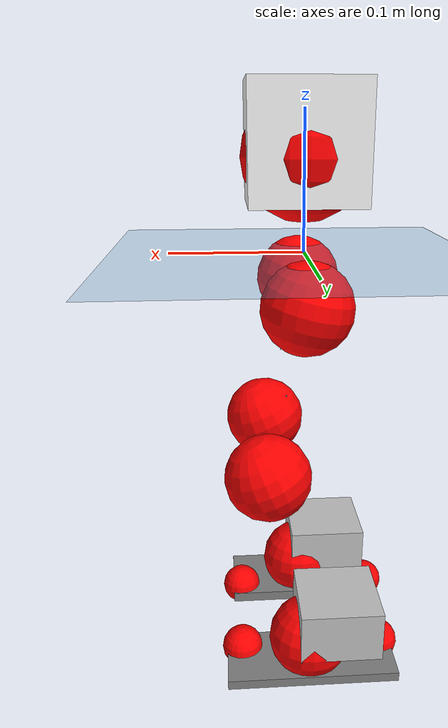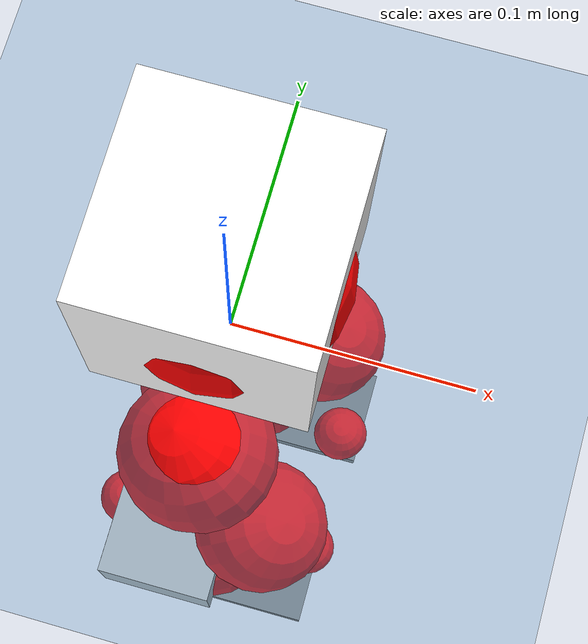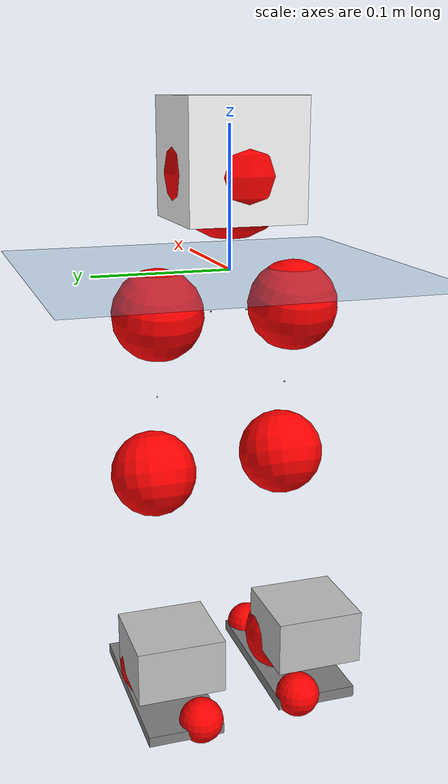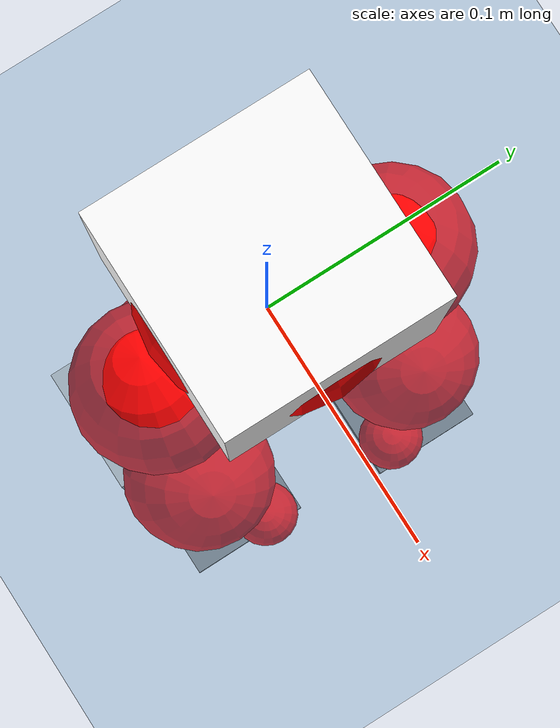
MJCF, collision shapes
<mujoco model="pi_12dof_release_v1">
  <compiler angle="radian" assetdir="assets" balanceinertia="true" inertiafromgeom="false"/>

  <option timestep="0.005" density="1.2" viscosity="2e-05"/>

  <size nkey="1"/>

  <visual>
    <quality shadowsize="8192"/>
    <map shadowclip="0.5"/>
  </visual>

  <default>
    <default class="/">
      <joint armature="0.01" damping="0.01" frictionloss="0.01"/>
      <geom contype="0" conaffinity="0" group="1" solref="-1000 -80"/>
      <site size="0.01 0.005 0.005" group="5"/>
      <general forcelimited="true" biastype="affine" gainprm="20" biasprm="0 -20 -0.5"/>
      <default class="foot">
        <geom size="0.0845 0.036 0.005" type="box" condim="6" group="4" priority="1" friction="0.9 0.2 0.2" solimp="0.015 1 0.005"/>
      </default>
      <default class="reward_collision_sphere">
        <geom group="5" rgba="1 0 0 1"/>
      </default>
    </default>
  </default>

  <asset>
    <texture type="skybox" colorspace="auto" name="//unnamed_texture_0" builtin="gradient" rgb1="0.95 0.95 0.95" rgb2="0.95 0.95 0.95" width="100" height="600"/>
    <texture type="2d" colorspace="auto" name="texplane" builtin="checker" rgb1="0.345 0.575 0.748" rgb2="0.345 0.575 0.748" markrgb="1 1 1" width="512" height="512"/>
    <material name="MatPlane" class="/" texture="texplane" texuniform="true" texrepeat="2 2" specular="0.9"/>
    <mesh name="baselink_1" class="/" file="baselink_1.STL"/>
    <mesh name="r_hip_pitch_link" class="/" file="r_hip_pitch_link.STL"/>
    <mesh name="r_hip_roll_link" class="/" file="r_hip_roll_link.STL"/>
    <mesh name="r_thigh_link" class="/" file="r_thigh_link.STL"/>
    <mesh name="r_calf_link" class="/" file="r_calf_link.STL"/>
    <mesh name="r_ankle_pitch_link" class="/" file="r_ankle_pitch_link.STL"/>
    <mesh name="r_ankle_roll_link" class="/" file="r_ankle_roll_link.STL"/>
    <mesh name="l_hip_pitch_link" class="/" file="l_hip_pitch_link.STL"/>
    <mesh name="l_hip_roll_link" class="/" file="l_hip_roll_link.STL"/>
    <mesh name="l_thigh_link" class="/" file="l_thigh_link.STL"/>
    <mesh name="l_calf_link" class="/" file="l_calf_link.STL"/>
    <mesh name="l_ankle_pitch_link" class="/" file="l_ankle_pitch_link.STL"/>
    <mesh name="l_ankle_roll_link" class="/" file="l_ankle_roll_link.STL"/>
  </asset>

  <worldbody>
    <geom name="floor" class="/" size="100 100 0.125" type="plane" group="0" material="MatPlane"/>
    <light name="toplight_shadow" class="/" pos="0 0 5" dir="0.0990148 0.0990148 -0.990148" type="directional" ambient="0.04 0.04 0.04" diffuse="0.55 0.55 0.55" specular="0.12 0.12 0.12"/>
    <light name="toplight_fill" class="/" pos="0 0 5" dir="0.0990148 0.0990148 -0.990148" type="directional" castshadow="false" ambient="0.04 0.04 0.04" diffuse="0.3 0.3 0.3" specular="0.08 0.08 0.08"/>
    <body name="trunk" pos="0.000536752 -0.000247196 0.00114231" quat="1 -0.000159788 7.01523e-07 -9.41985e-05">
      <inertial pos="0.00342126 0.000267481 0.0373891" quat="0.695402 0.0097113 0.00988724 0.718487" mass="1.19421" diaginertia="0.00426479 0.00144133 0.00305878"/>
      <joint name="//unnamed_joint_0" type="free"/>
      <geom name="//unnamed_geom_1" class="/" type="mesh" density="0" rgba="1 1 1 1" mesh="baselink_1"/>
      <geom name="//unnamed_geom_2" class="/" size="0.0416111 0.0416111 0.0416111" pos="0 0 0.0757082" type="box" rgba="1 1 1 1"/>
      <geom name="//unnamed_geom_3" class="reward_collision_sphere" size="0.0457722" pos="0 0 0.0662447"/>
      <site name="imu" class="/" pos="0.00751728 0.0121439 -0.00623248" size="0.00832221"/>
      <camera name="track" class="/" pos="0 -1.39785 0" quat="0.707107 0.707107 0 0" mode="trackcom"/>
      <camera name="ego_camera" class="/" pos="0.0638539 0 0.170344" quat="-0.5 -0.5 0.5 0.5"/>
      <body name="r_hip_pitch_link" pos="-0.00106284 -0.0125134 -0.030446" quat="0.992197 1.5036e-05 -0.124678 8.11909e-05">
        <inertial pos="0.000722351 -0.038552 0.000696682" quat="-0.0202414 0.706256 -0.032826 0.706906" mass="0.205734" diaginertia="4.79861e-05 1.53743e-05 6.13085e-05"/>
        <joint name="r_hip_pitch_joint" class="/" pos="0 0 0" axis="-0.00114165 -0.999975 0.00694727" range="-1.70799 1.20272" armature="0.0081461" damping="0.00561595" frictionloss="0.00878542"/>
        <geom name="//unnamed_geom_4" class="/" type="mesh" density="0" rgba="0.75294 0.75294 0.75294 1" mesh="r_hip_pitch_link"/>
        <geom name="//unnamed_geom_5" class="/" size="0.000416111 0.000416111 0.000416111" type="box" rgba="0.75294 0.75294 0.75294 1"/>
        <body name="r_hip_roll_link" pos="0.000333722 -0.0356741 0.00130747" quat="1 0.000598935 -8.06465e-06 0.000456105">
          <inertial pos="-0.00214053 -0.000100188 -0.0610965" quat="0.703815 -0.0695218 -0.075529 0.702927" mass="0.228197" diaginertia="0.000151825 4.6237e-05 9.5751e-05"/>
          <joint name="r_hip_roll_joint" class="/" pos="0 0 0" axis="-0.999966 -0.0037411 -0.00734513" range="-0.109932 0.50123" armature="0.00892585" damping="0.00145851" frictionloss="0.00929245"/>
          <geom name="//unnamed_geom_6" class="/" type="mesh" density="0" rgba="0.75294 0.75294 0.75294 1" mesh="r_hip_roll_link"/>
          <geom name="//unnamed_geom_7" class="/" size="0.000416111 0.000416111 0.000416111" type="box" rgba="0.75294 0.75294 0.75294 1"/>
          <geom name="//unnamed_geom_8" class="reward_collision_sphere" size="0.0332888"/>
          <body name="r_thigh_link" pos="-0.00196647 -0.000536786 -0.0637109" quat="1 -0.000350165 -0.00070721 -0.000477595">
            <inertial pos="0.00242068 0.00149666 -0.0434768" quat="0.736004 0.676968 0.00349029 -0.000621234" mass="0.0652536" diaginertia="5.66758e-05 1.59796e-05 4.46576e-05"/>
            <joint name="r_thigh_joint" class="/" pos="0 0 0" axis="0.000690689 0.000321791 -1" stiffness="0.006529" range="-0.35654 0.604527" armature="0.00890032" damping="0.0126022" frictionloss="0.00781927"/>
            <geom name="//unnamed_geom_9" class="/" type="mesh" density="0" rgba="0.75294 0.75294 0.75294 1" mesh="r_thigh_link"/>
            <geom name="//unnamed_geom_10" class="/" size="0.000416111 0.000416111 0.000416111" type="box" rgba="0.75294 0.75294 0.75294 1"/>
            <body name="r_calf_link" pos="-0.00188607 -0.00332216 -0.0635677" quat="0.9476 1.46904e-05 0.319459 0.000714402">
              <inertial pos="-0.00352753 -0.000512399 -0.0661842" quat="0.999961 -0.00870877 -0.000776462 0.00137707" mass="0.446837" diaginertia="0.00155082 0.000572118 0.000129568"/>
              <joint name="r_calf_joint" class="/" pos="0 0 0" axis="-0.00947891 -0.999894 0.0110306" range="-1.64353 0.69973" armature="0.00821904" damping="0.000161853" frictionloss="0.00826574"/>
              <geom name="//unnamed_geom_11" class="/" type="mesh" density="0" rgba="0.75294 0.75294 0.75294 1" mesh="r_calf_link"/>
              <geom name="//unnamed_geom_12" class="/" size="0.000416111 0.000416111 0.000416111" type="box" rgba="0.75294 0.75294 0.75294 1"/>
              <geom name="//unnamed_geom_13" class="reward_collision_sphere" size="0.0332888"/>
              <body name="r_ankle_pitch_link" pos="-0.0012091 -0.00155636 -0.137675" quat="0.979955 -0.00021698 -0.199215 0.0013044">
                <inertial pos="0.00122148 0.00228364 -0.0030692" quat="0.00280902 0.712826 -0.0106118 0.701255" mass="0.102562" diaginertia="0.000135344 3.63353e-05 9.35813e-05"/>
                <joint name="r_ankle_pitch_joint" class="/" pos="0 0 0" axis="0.010462 -0.999945 0.000890549" stiffness="0.000638262" range="-1.35003 0.508994" armature="0.00716414" damping="0" frictionloss="0.00875756"/>
                <geom name="//unnamed_geom_14" class="/" type="mesh" density="0" rgba="0.75294 0.75294 0.75294 1" mesh="r_ankle_pitch_link"/>
                <geom name="//unnamed_geom_15" class="/" size="0.0324566 0.0332888 0.0208055" type="box" rgba="0.75294 0.75294 0.75294 1"/>
                <body name="r_ankle_roll_link" pos="0.0656418 0.00581765 0.000575667" quat="1 0.000499522 -0.000621021 0.000376918">
                  <inertial pos="-0.0235029 0.000263998 -0.0128233" quat="0.559768 0.423416 0.436646 0.562777" mass="0.295758" diaginertia="0.000511287 0.000173168 0.000209644"/>
                  <joint name="r_ankle_roll_joint" class="/" pos="0 0 0" axis="-0.999992 -0.00176722 0.00345066" stiffness="0.00923807" range="-0.11384 0.200523" armature="0.00813658" damping="0" frictionloss="0.00851386"/>
                  <geom name="//unnamed_geom_16" class="/" type="mesh" density="0" rgba="0.75294 0.75294 0.75294 1" mesh="r_ankle_roll_link"/>
                  <geom name="//unnamed_geom_17" class="/" type="mesh" rgba="0.75294 0.75294 0.75294 1" mesh="r_ankle_roll_link"/>
                  <geom name="right_foot" class="foot" size="0.0634518 0.0307388 0.00428104" pos="-0.0434206 0 -0.0416395"/>
                  <geom name="//unnamed_geom_19" class="reward_collision_sphere" size="0.0332888" pos="-0.0425693 0 -0.0189271"/>
                  <geom name="//unnamed_geom_20" class="reward_collision_sphere" size="0.0166444" pos="0.0127708 0.0139785 -0.0378541"/>
                  <geom name="//unnamed_geom_21" class="reward_collision_sphere" size="0.0166444" pos="-0.102166 0.0139785 -0.0378541"/>
                  <site name="right_foot" class="foot" pos="-0.0434206 0 -0.0416395" size="0.00832221"/>
                </body>
              </body>
            </body>
          </body>
        </body>
      </body>
      <body name="l_hip_pitch_link" pos="-0.000508897 0.0144169 -0.0302826" quat="0.992064 0.000185072 -0.125734 0.000235283">
        <inertial pos="-0.00233227 0.0378572 0.00130757" quat="-0.026405 0.704887 0.035788 0.707924" mass="0.217107" diaginertia="5.37651e-05 1.75792e-05 7.28761e-05"/>
        <joint name="l_hip_pitch_joint" class="/" pos="0 0 0" axis="0.00310624 0.999995 -9.4673e-05" range="-1.22624 1.70042" armature="0.00830033" damping="0" frictionloss="0.00941097"/>
        <geom name="//unnamed_geom_22" class="/" type="mesh" density="0" rgba="0.75294 0.75294 0.75294 1" mesh="l_hip_pitch_link"/>
        <geom name="//unnamed_geom_23" class="/" size="0.000416111 0.000416111 0.000416111" type="box" rgba="0.75294 0.75294 0.75294 1"/>
        <body name="l_hip_roll_link" pos="0.00218755 0.0387423 -0.00130052" quat="1 -0.000318076 0.000622152 9.58437e-05">
          <inertial pos="-0.00313945 -0.00157667 -0.0561073" quat="0.699091 -0.0756572 -0.0780637 0.70672" mass="0.220088" diaginertia="0.000144357 4.55307e-05 9.71945e-05"/>
          <joint name="l_hip_roll_joint" class="/" pos="0 0 0" axis="-0.999998 0.00170375 -0.000742023" range="-0.495704 0.0642141" armature="0.00770529" damping="0.0145981" frictionloss="0.00829527"/>
          <geom name="//unnamed_geom_24" class="/" type="mesh" density="0" rgba="0.75294 0.75294 0.75294 1" mesh="l_hip_roll_link"/>
          <geom name="//unnamed_geom_25" class="/" size="0.000416111 0.000416111 0.000416111" type="box" rgba="0.75294 0.75294 0.75294 1"/>
          <geom name="//unnamed_geom_26" class="reward_collision_sphere" size="0.0332888"/>
          <body name="l_thigh_link" pos="-0.00224529 -0.00190475 -0.0661916" quat="1 -0.000369858 4.28716e-05 0.000453503">
            <inertial pos="0.00124688 0.000699974 -0.0437951" quat="0.675459 0.737397 -0.00015981 7.55575e-05" mass="0.0629408" diaginertia="5.50096e-05 1.49311e-05 4.44891e-05"/>
            <joint name="l_thigh_joint" class="/" pos="0 0 0" axis="-0.000542858 -0.00125621 -0.999999" range="-0.581351 0.276961" armature="0.00748929" damping="0" frictionloss="0.00771764"/>
            <geom name="//unnamed_geom_27" class="/" type="mesh" density="0" rgba="0.75294 0.75294 0.75294 1" mesh="l_thigh_link"/>
            <geom name="//unnamed_geom_28" class="/" size="0.000416111 0.000416111 0.000416111" type="box" rgba="0.75294 0.75294 0.75294 1"/>
            <body name="l_calf_link" pos="-0.00304501 0.000643994 -0.0668982" quat="0.947734 -5.73444e-05 0.31906 0.000380586">
              <inertial pos="-0.00101062 -0.000383223 -0.0643456" quat="0.999984 0.00320552 0.000746865 0.00454835" mass="0.474591" diaginertia="0.00154096 0.000568329 0.000134837"/>
              <joint name="l_calf_joint" class="/" pos="0 0 0" axis="-0.0145304 0.999894 -8.84742e-05" range="-0.658126 1.64717" armature="0.00913107" damping="0" frictionloss="0.00921349"/>
              <geom name="//unnamed_geom_29" class="/" type="mesh" density="0" rgba="0.75294 0.75294 0.75294 1" mesh="l_calf_link"/>
              <geom name="//unnamed_geom_30" class="/" size="0.000416111 0.000416111 0.000416111" type="box" rgba="0.75294 0.75294 0.75294 1"/>
              <geom name="//unnamed_geom_31" class="reward_collision_sphere" size="0.0332888"/>
              <body name="l_ankle_pitch_link" pos="-0.00233775 0.00341894 -0.13669" quat="0.979977 -0.000161507 -0.199109 -0.000152819">
                <inertial pos="0.00716741 -0.003469 -8.85519e-05" quat="-0.0027526 0.71264 0.00878056 0.701469" mass="0.10019" diaginertia="0.000134156 3.61313e-05 9.02541e-05"/>
                <joint name="l_ankle_pitch_joint" class="/" pos="0 0 0" axis="0.000449135 1 -0.000128202" stiffness="0.00190711" range="-0.549713 1.29235" armature="0.00704952" damping="0.0172334" frictionloss="0.00783675"/>
                <geom name="//unnamed_geom_32" class="/" type="mesh" density="0" rgba="0.75294 0.75294 0.75294 1" mesh="l_ankle_pitch_link"/>
                <geom name="//unnamed_geom_33" class="/" size="0.0324566 0.0332888 0.0208055" type="box" rgba="0.75294 0.75294 0.75294 1"/>
                <body name="l_ankle_roll_link" pos="0.0644247 0.00153095 -0.000859516" quat="0.999999 0.000877202 -0.000558734 0.00015554">
                  <inertial pos="-0.0195363 -0.000941544 -0.0124599" quat="0.560025 0.430196 0.434752 0.558832" mass="0.301739" diaginertia="0.000513756 0.000182815 0.000222439"/>
                  <joint name="l_ankle_roll_joint" class="/" pos="0 0 0" axis="-1 0.000726924 -0.000571527" range="-0.136912 0.191764" armature="0.00839746" damping="0" frictionloss="0.00719673"/>
                  <geom name="//unnamed_geom_34" class="/" type="mesh" density="0" rgba="0.75294 0.75294 0.75294 1" mesh="l_ankle_roll_link"/>
                  <geom name="//unnamed_geom_35" class="/" type="mesh" rgba="0.75294 0.75294 0.75294 1" mesh="l_ankle_roll_link"/>
                  <geom name="left_foot" class="foot" size="0.0689277 0.0285863 0.00386359" pos="-0.0434206 0 -0.0416395"/>
                  <geom name="//unnamed_geom_37" class="reward_collision_sphere" size="0.0332888" pos="-0.0425693 0 -0.0189271"/>
                  <geom name="//unnamed_geom_38" class="reward_collision_sphere" size="0.0166444" pos="0.0127708 -0.0139785 -0.0378541"/>
                  <geom name="//unnamed_geom_39" class="reward_collision_sphere" size="0.0166444" pos="-0.102166 -0.0139785 -0.0378541"/>
                  <site name="left_foot" class="foot" pos="-0.0434206 0 -0.0416395" size="0.00832221"/>
                </body>
              </body>
            </body>
          </body>
        </body>
      </body>
    </body>
  </worldbody>

  <contact>
    <pair class="/" geom1="floor" geom2="right_foot" name="//unnamed_contact_1"/>
    <pair class="/" geom1="floor" geom2="left_foot" name="//unnamed_contact_0"/>
  </contact>

  <actuator>
    <general name="r_hip_pitch_joint" class="/" joint="r_hip_pitch_joint" forcerange="-17.8008 17.8008" gainprm="17.5016" biasprm="0 -17.5016 -0.418846"/>
    <general name="r_hip_roll_joint" class="/" joint="r_hip_roll_joint" forcerange="-18.5603 18.5603" gainprm="17.5016" biasprm="0 -17.5016 -0.418846"/>
    <general name="r_thigh_joint" class="/" joint="r_thigh_joint" forcerange="-17.6517 17.6517" gainprm="17.5016" biasprm="0 -17.5016 -0.418846"/>
    <general name="r_calf_joint" class="/" joint="r_calf_joint" forcerange="-16.1513 16.1513" gainprm="17.5016" biasprm="0 -17.5016 -0.418846"/>
    <general name="r_ankle_pitch_joint" class="/" joint="r_ankle_pitch_joint" forcerange="-15.6218 15.6218" gainprm="17.5016" biasprm="0 -17.5016 -0.418846"/>
    <general name="r_ankle_roll_joint" class="/" joint="r_ankle_roll_joint" forcerange="-18.4672 18.4672" gainprm="17.5016" biasprm="0 -17.5016 -0.418846"/>
    <general name="l_hip_pitch_joint" class="/" joint="l_hip_pitch_joint" forcerange="-17.8202 17.8202" gainprm="17.5016" biasprm="0 -17.5016 -0.418846"/>
    <general name="l_hip_roll_joint" class="/" joint="l_hip_roll_joint" forcerange="-18.3932 18.3932" gainprm="17.5016" biasprm="0 -17.5016 -0.418846"/>
    <general name="l_thigh_joint" class="/" joint="l_thigh_joint" forcerange="-19.0994 19.0994" gainprm="17.5016" biasprm="0 -17.5016 -0.418846"/>
    <general name="l_calf_joint" class="/" joint="l_calf_joint" forcerange="-16.7579 16.7579" gainprm="17.5016" biasprm="0 -17.5016 -0.418846"/>
    <general name="l_ankle_pitch_joint" class="/" joint="l_ankle_pitch_joint" forcerange="-19.1276 19.1276" gainprm="17.5016" biasprm="0 -17.5016 -0.418846"/>
    <general name="l_ankle_roll_joint" class="/" joint="l_ankle_roll_joint" forcerange="-17.9383 17.9383" gainprm="17.5016" biasprm="0 -17.5016 -0.418846"/>
  </actuator>

  <sensor>
    <gyro site="imu" name="imu_angular_velocity"/>
    <velocimeter site="imu" name="imu_linear_velocity"/>
    <framelinvel objtype="site" objname="left_foot" name="left_foot_global_linear_velocity"/>
    <framelinvel objtype="site" objname="right_foot" name="right_foot_global_linear_velocity"/>
  </sensor>

  <keyframe>
    <key name="home" qpos="0 0 0.291 1 0 0 0 0.4 0 0 -0.8 0.4 0 -0.4 0 0 0.8 -0.4 0"/>
  </keyframe>
</mujoco>
